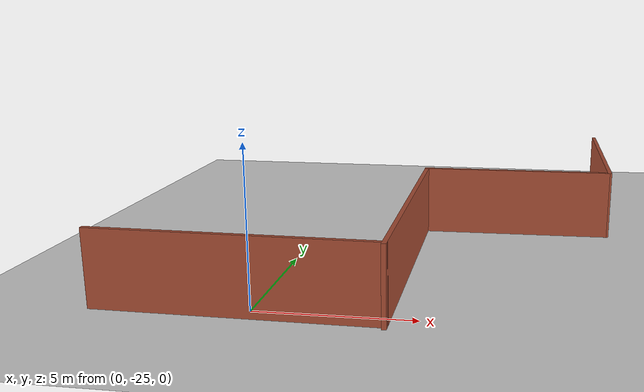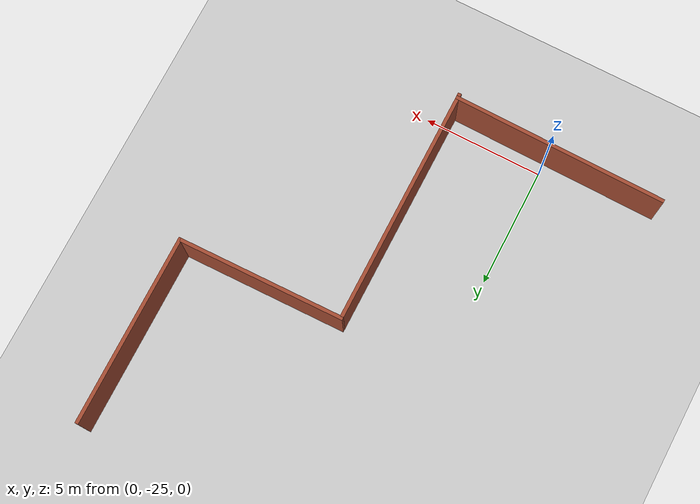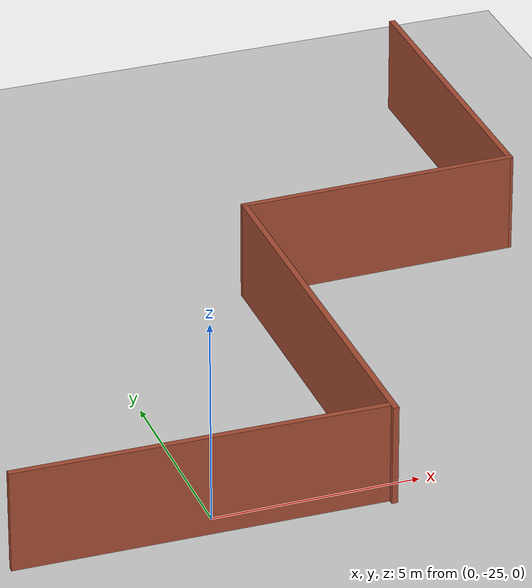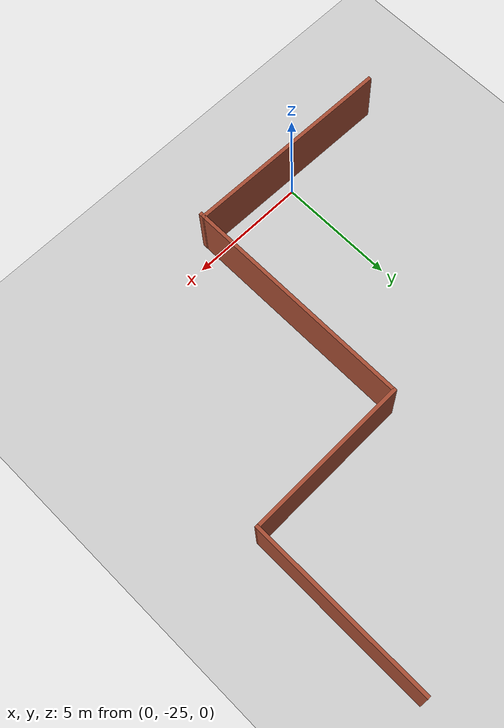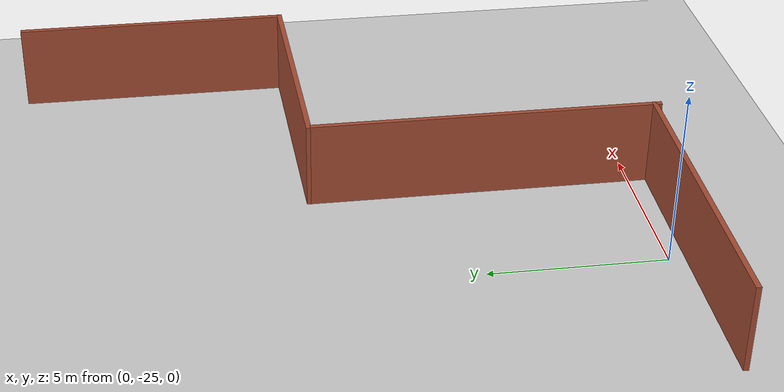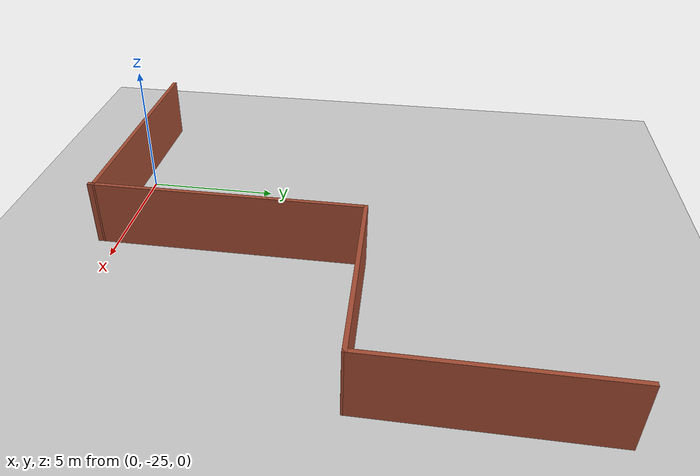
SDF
<sdf version="1.6">
 <world name="default">
  <model name="ground_plane">
   <static>1</static>
   <link name="link">
    <collision name="collision">
     <geometry><plane><normal>0 0 1</normal><size>100 100</size></plane></geometry>
     <surface><friction><ode><mu>100</mu><mu2>50</mu2></ode></friction></surface>
    </collision>
    <visual name="visual">
     <cast_shadows>0</cast_shadows>
     <geometry><plane><normal>0 0 1</normal><size>100 100</size></plane></geometry>
     <material>
      <script><uri>file://media/materials/scripts/gazebo.material</uri><name>Gazebo/Grey</name></script>
     </material>
    </visual>
   </link>
  </model>
  <model name="wonkyBuilding">
   <link name="Wall_33">
    <pose>5.00474 -14.8391 0 0 0 -0.013767</pose>
    <visual name="Wall_33_Visual">
     <pose>0 0 1.25 0 -0 0</pose>
     <geometry><box><size>9.01014 0.15 2.5</size></box></geometry>
     <material>
      <script><uri>file://media/materials/scripts/gazebo.material</uri><name>Gazebo/Bricks</name></script>
      <ambient>1 1 1 1</ambient>
      <shader type="pixel"/>
      <diffuse>1 1 1 1</diffuse>
      <specular>0.2 0.2 0.2 1</specular>
      <emissive>0 0 0 1</emissive>
     </material>
     <meta><layer>0</layer></meta>
    </visual>
    <collision name="Wall_33_Collision">
     <pose>0 0 1.25 0 -0 0</pose>
     <geometry><box><size>9.01014 0.15 2.5</size></box></geometry>
     <surface>
      <friction>
       <ode><mu>1</mu><mu2>1</mu2><fdir1>0 0 0</fdir1><slip1>0</slip1><slip2>0</slip2></ode>
       <torsional>
        <coefficient>1</coefficient>
        <patch_radius>0</patch_radius>
        <surface_radius>0</surface_radius>
        <use_patch_radius>1</use_patch_radius>
        <ode><slip>0</slip></ode>
       </torsional>
      </friction>
      <bounce><restitution_coefficient>0</restitution_coefficient><threshold>1e+06</threshold></bounce>
      <contact>
       <collide_without_contact>0</collide_without_contact>
       <collide_without_contact_bitmask>1</collide_without_contact_bitmask>
       <collide_bitmask>1</collide_bitmask>
       <ode>
        <soft_cfm>0</soft_cfm>
        <soft_erp>0.2</soft_erp>
        <kp>1e+13</kp>
        <kd>1</kd>
        <max_vel>0.01</max_vel>
        <min_depth>0</min_depth>
       </ode>
       <bullet>
        <split_impulse>1</split_impulse>
        <split_impulse_penetration_threshold>-0.01</split_impulse_penetration_threshold>
        <soft_cfm>0</soft_cfm>
        <soft_erp>0.2</soft_erp>
        <kp>1e+13</kp>
        <kd>1</kd>
       </bullet>
      </contact>
     </surface>
    </collision>
   </link>
   <link name="Wall_34">
    <pose>9.43439 -10.0971 0 0 -0 1.5708</pose>
    <visual name="Wall_34_Visual">
     <pose>0 0 1.25 0 -0 0</pose>
     <geometry><box><size>10 0.15 2.5</size></box></geometry>
     <material>
      <script><uri>file://media/materials/scripts/gazebo.material</uri><name>Gazebo/Bricks</name></script>
      <ambient>1 1 1 1</ambient>
      <shader type="pixel"/>
      <diffuse>1 1 1 1</diffuse>
      <specular>0.2 0.2 0.2 1</specular>
      <emissive>0 0 0 1</emissive>
     </material>
     <meta><layer>0</layer></meta>
    </visual>
    <collision name="Wall_34_Collision">
     <pose>0 0 1.25 0 -0 0</pose>
     <geometry><box><size>10 0.15 2.5</size></box></geometry>
     <surface>
      <friction>
       <ode><mu>1</mu><mu2>1</mu2><fdir1>0 0 0</fdir1><slip1>0</slip1><slip2>0</slip2></ode>
       <torsional>
        <coefficient>1</coefficient>
        <patch_radius>0</patch_radius>
        <surface_radius>0</surface_radius>
        <use_patch_radius>1</use_patch_radius>
        <ode><slip>0</slip></ode>
       </torsional>
      </friction>
      <bounce><restitution_coefficient>0</restitution_coefficient><threshold>1e+06</threshold></bounce>
      <contact>
       <collide_without_contact>0</collide_without_contact>
       <collide_without_contact_bitmask>1</collide_without_contact_bitmask>
       <collide_bitmask>1</collide_bitmask>
       <ode>
        <soft_cfm>0</soft_cfm>
        <soft_erp>0.2</soft_erp>
        <kp>1e+13</kp>
        <kd>1</kd>
        <max_vel>0.01</max_vel>
        <min_depth>0</min_depth>
       </ode>
       <bullet>
        <split_impulse>1</split_impulse>
        <split_impulse_penetration_threshold>-0.01</split_impulse_penetration_threshold>
        <soft_cfm>0</soft_cfm>
        <soft_erp>0.2</soft_erp>
        <kp>1e+13</kp>
        <kd>1</kd>
       </bullet>
      </contact>
     </surface>
    </collision>
   </link>
   <link name="Wall_35">
    <pose>12.8797 -4.98912 0 0 -0 0.017699</pose>
    <visual name="Wall_35_Visual">
     <pose>0 0 1.25 0 -0 0</pose>
     <geometry><box><size>7.04178 0.15 2.5</size></box></geometry>
     <material>
      <script><uri>file://media/materials/scripts/gazebo.material</uri><name>Gazebo/Bricks</name></script>
      <ambient>1 1 1 1</ambient>
      <shader type="pixel"/>
      <diffuse>1 1 1 1</diffuse>
      <specular>0.2 0.2 0.2 1</specular>
      <emissive>0 0 0 1</emissive>
     </material>
     <meta><layer>0</layer></meta>
    </visual>
    <collision name="Wall_35_Collision">
     <pose>0 0 1.25 0 -0 0</pose>
     <geometry><box><size>7.04178 0.15 2.5</size></box></geometry>
     <surface>
      <friction>
       <ode><mu>1</mu><mu2>1</mu2><fdir1>0 0 0</fdir1><slip1>0</slip1><slip2>0</slip2></ode>
       <torsional>
        <coefficient>1</coefficient>
        <patch_radius>0</patch_radius>
        <surface_radius>0</surface_radius>
        <use_patch_radius>1</use_patch_radius>
        <ode><slip>0</slip></ode>
       </torsional>
      </friction>
      <bounce><restitution_coefficient>0</restitution_coefficient><threshold>1e+06</threshold></bounce>
      <contact>
       <collide_without_contact>0</collide_without_contact>
       <collide_without_contact_bitmask>1</collide_without_contact_bitmask>
       <collide_bitmask>1</collide_bitmask>
       <ode>
        <soft_cfm>0</soft_cfm>
        <soft_erp>0.2</soft_erp>
        <kp>1e+13</kp>
        <kd>1</kd>
        <max_vel>0.01</max_vel>
        <min_depth>0</min_depth>
       </ode>
       <bullet>
        <split_impulse>1</split_impulse>
        <split_impulse_penetration_threshold>-0.01</split_impulse_penetration_threshold>
        <soft_cfm>0</soft_cfm>
        <soft_erp>0.2</soft_erp>
        <kp>1e+13</kp>
        <kd>1</kd>
       </bullet>
      </contact>
     </surface>
    </collision>
   </link>
   <link name="Wall_36">
    <pose>16.3251 -1.00313 0 0 -0 1.5708</pose>
    <visual name="Wall_36_Visual">
     <pose>0 0 1.25 0 -0 0</pose>
     <geometry><box><size>8 0.15 2.5</size></box></geometry>
     <material>
      <script><uri>file://media/materials/scripts/gazebo.material</uri><name>Gazebo/Bricks</name></script>
      <ambient>1 1 1 1</ambient>
      <shader type="pixel"/>
      <diffuse>1 1 1 1</diffuse>
      <specular>0.2 0.2 0.2 1</specular>
      <emissive>0 0 0 1</emissive>
     </material>
     <meta><layer>0</layer></meta>
    </visual>
    <collision name="Wall_36_Collision">
     <pose>0 0 1.25 0 -0 0</pose>
     <geometry><box><size>8 0.15 2.5</size></box></geometry>
     <surface>
      <friction>
       <ode><mu>1</mu><mu2>1</mu2><fdir1>0 0 0</fdir1><slip1>0</slip1><slip2>0</slip2></ode>
       <torsional>
        <coefficient>1</coefficient>
        <patch_radius>0</patch_radius>
        <surface_radius>0</surface_radius>
        <use_patch_radius>1</use_patch_radius>
        <ode><slip>0</slip></ode>
       </torsional>
      </friction>
      <bounce><restitution_coefficient>0</restitution_coefficient><threshold>1e+06</threshold></bounce>
      <contact>
       <collide_without_contact>0</collide_without_contact>
       <collide_without_contact_bitmask>1</collide_without_contact_bitmask>
       <collide_bitmask>1</collide_bitmask>
       <ode>
        <soft_cfm>0</soft_cfm>
        <soft_erp>0.2</soft_erp>
        <kp>1e+13</kp>
        <kd>1</kd>
        <max_vel>0.01</max_vel>
        <min_depth>0</min_depth>
       </ode>
       <bullet>
        <split_impulse>1</split_impulse>
        <split_impulse_penetration_threshold>-0.01</split_impulse_penetration_threshold>
        <soft_cfm>0</soft_cfm>
        <soft_erp>0.2</soft_erp>
        <kp>1e+13</kp>
        <kd>1</kd>
       </bullet>
      </contact>
     </surface>
    </collision>
   </link>
   <static>1</static>
   <pose>-5.33653 -10.6887 0 0 -0 0</pose>
  </model>
 </world>
</sdf>
